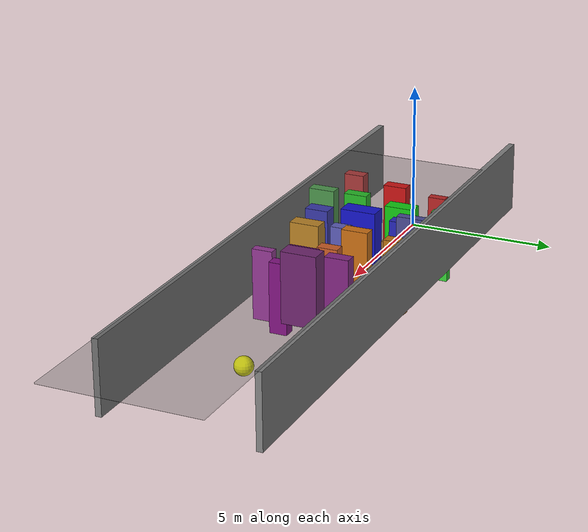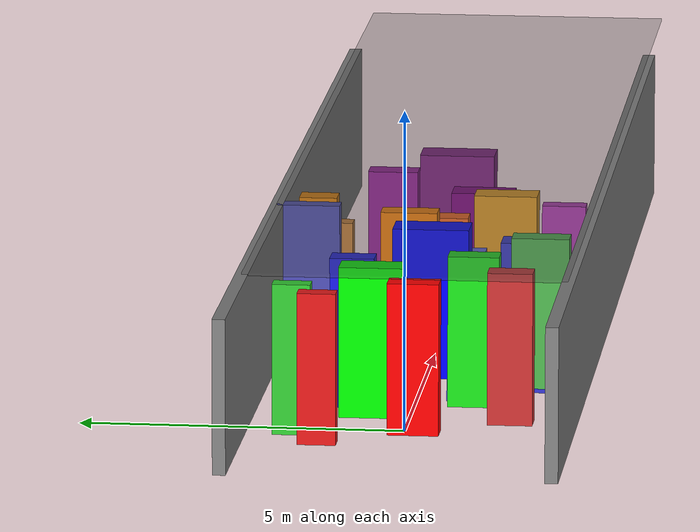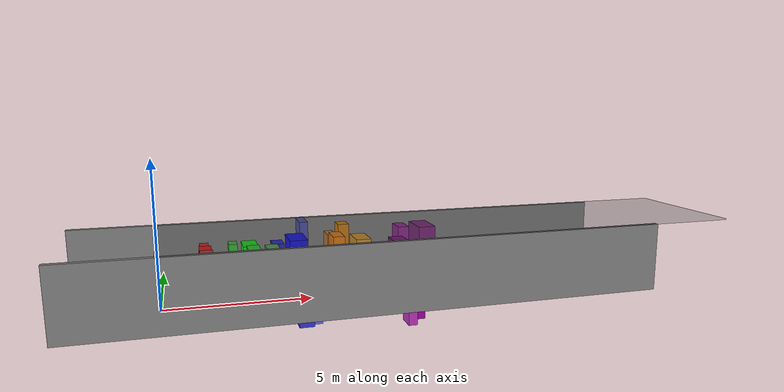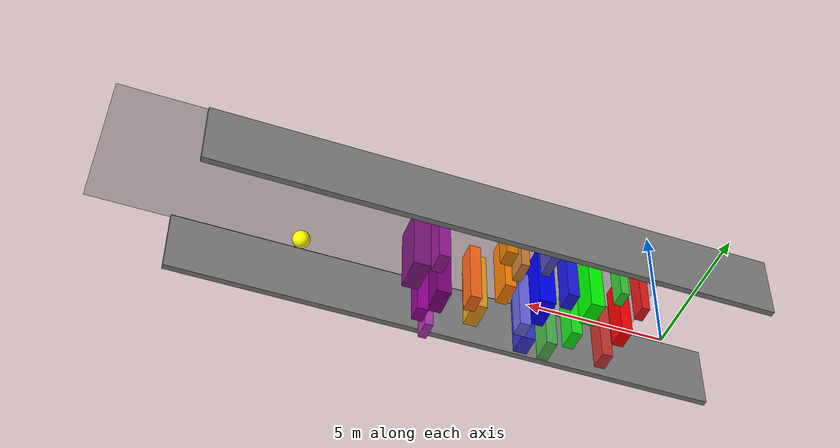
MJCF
<mujoco model="DenseObstacleCourse">

<worldbody>
    <!-- Murs latéraux -->
    <body name="obstacle_right" pos="7 -2.5 1.2" mocap="true">
        <geom type="box" size="10 0.1 1.2" rgba="0.5 0.5 0.5 1"/>
    </body>
    <body name="obstacle_left" pos="7 2.5 1.2" mocap="true">
        <geom type="box" size="10 0.1 1.2" rgba="0.5 0.5 0.5 1"/>
    </body>

    <body name="obstacle_up" pos="10 0 2.4" mocap="true">
        <geom type="box" size="10 2.5 0.02" rgba="0.3 0.3 0.3 0.3"/>
    </body>

    <!-- Rangée 1 (x = 1-2) -->
    <body name="obstacle_1" pos="1.5 0 0.8" mocap="true">
        <geom type="box" size="0.2 0.4 1.2" rgba="1 0 0 1"/>
    </body>
    <body name="obstacle_2" pos="1.5 1.5 0.6" mocap="true">
        <geom type="box" size="0.15 0.3 1.2" rgba="0.9 0.1 0.1 1"/>
    </body>
    <body name="obstacle_3" pos="1.5 -1.5 1.0" mocap="true">
        <geom type="box" size="0.2 0.35 1.2" rgba="0.8 0.2 0.2 1"/>
    </body>

    <!-- Rangée 2 (x = 2.5-3.5) -->
    <body name="obstacle_4" pos="3 0.8 0.7" mocap="true">
        <geom type="box" size="0.25 0.5 1.2" rgba="0 1 0 1"/>
    </body>
    <body name="obstacle_5" pos="3 -0.8 0.9" mocap="true">
        <geom type="box" size="0.2 0.4 1.2" rgba="0.1 0.9 0.1 1"/>
    </body>
    <body name="obstacle_6" pos="2.5 2 0.5" mocap="true">
        <geom type="box" size="0.15 0.3 1.2" rgba="0.2 0.8 0.2 1"/>
    </body>
    <body name="obstacle_7" pos="3.5 -1.8 1.1" mocap="true">
        <geom type="box" size="0.2 0.45 1.2" rgba="0.3 0.7 0.3 1"/>
    </body>

    <!-- Rangée 3 (x = 4-5) -->
    <body name="obstacle_8" pos="4.5 0 1.0" mocap="true">
        <geom type="box" size="0.3 0.6 1.2" rgba="0 0 1 1"/>
    </body>
    <body name="obstacle_9" pos="4 1.2 0.6" mocap="true">
        <geom type="box" size="0.2 0.35 1.2" rgba="0.1 0.1 0.9 1"/>
    </body>
    <body name="obstacle_10" pos="4.5 -1.5 0.8" mocap="true">
        <geom type="box" size="0.25 0.4 1.2" rgba="0.2 0.2 0.8 1"/>
    </body>
    <body name="obstacle_11" pos="5 2 1.2" mocap="true">
        <geom type="box" size="0.15 0.5 1.2" rgba="0.3 0.3 0.7 1"/>
    </body>
    <body name="obstacle_12" pos="5 -0.5 0.5" mocap="true">
        <geom type="box" size="0.2 0.3 1.2" rgba="0.4 0.4 0.9 1"/>
    </body>

    <!-- Rangée 4 (x = 6-7) -->
    <body name="obstacle_13" pos="6 0.5 0.9" mocap="true">
        <geom type="box" size="0.2 0.45 1.2" rgba="1 0.5 0 1"/>
    </body>
    <body name="obstacle_14" pos="6.5 -1 1.1" mocap="true">
        <geom type="box" size="0.25 0.5 1.2" rgba="0.9 0.6 0.1 1"/>
    </body>
    <body name="obstacle_15" pos="6 1.8 0.7" mocap="true">
        <geom type="box" size="0.15 0.4 1.2" rgba="0.8 0.5 0.2 1"/>
    </body>
    <body name="obstacle_16" pos="7 0 0.6" mocap="true">
        <geom type="box" size="0.2 0.35 1.2" rgba="1 0.4 0.1 1"/>
    </body>
    <body name="obstacle_17" pos="6.5 2 1.0" mocap="true">
        <geom type="box" size="0.2 0.3 1.2" rgba="0.9 0.5 0 1"/>
    </body>

    <!-- Rangée 5 (x = 8-9) -->
    <body name="obstacle_18" pos="8 -0.5 0.8" mocap="true">
        <geom type="box" size="0.25 0.5 1.2" rgba="0.5 0 0.5 1"/>
    </body>
    <body name="obstacle_19" pos="8.5 1 1.0" mocap="true">
        <geom type="box" size="0.2 0.4 1.2" rgba="0.6 0.1 0.6 1"/>
    </body>
    <body name="obstacle_20" pos="8 -1.8 0.6" mocap="true">
        <geom type="box" size="0.15 0.35 1.2" rgba="0.7 0.2 0.7 1"/>
    </body>
    <body name="obstacle_21" pos="9 0 1.2" mocap="true">
        <geom type="box" size="0.3 0.6 1.2" rgba="0.5 0.1 0.5 1"/>
    </body>
    <body name="obstacle_22" pos="8.5 -1 0.5" mocap="true">
        <geom type="box" size="0.2 0.3 1.2" rgba="0.6 0 0.6 1"/>
    </body>

    <!-- Target -->
    <body name="target" pos="13 0 0.3" mocap="true">
        <geom name="target_geom" type="sphere" size="0.3" rgba="1 1 0 1"/>
    </body>
</worldbody>
</mujoco>
